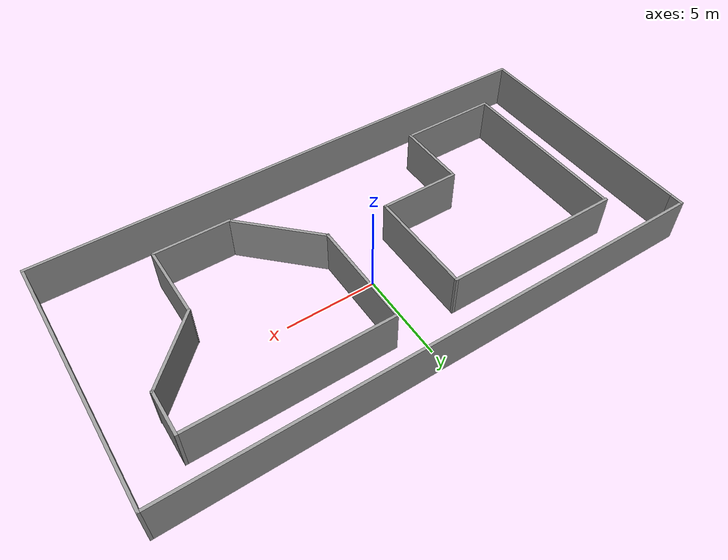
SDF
<?xml version='1.0'?>
<sdf version='1.6'>
  <model name='floorplan'>
    <pose frame=''>-0.247759 -1.08399 0 0 -0 0</pose>
    <link name='Wall_11'>
      <collision name='Wall_11_Collision'>
        <geometry>
          <box>
            <size>9.75 0.15 2.5</size>
          </box>
        </geometry>
        <pose frame=''>0 0 1.25 0 -0 0</pose>
      </collision>
      <visual name='Wall_11_Visual'>
        <pose frame=''>0 0 1.25 0 -0 0</pose>
        <geometry>
          <box>
            <size>9.75 0.15 2.5</size>
          </box>
        </geometry>
        <material>
          <script>
            <uri>file://media/materials/scripts/gazebo.material</uri>
            <name>Gazebo/Grey</name>
          </script>
          <ambient>1 1 1 1</ambient>
        </material>
        <meta>
          <layer>0</layer>
        </meta>
      </visual>
      <pose frame=''>-11.7101 -0.180374 0 0 -0 -1.5708</pose>
    </link>
    <link name='Wall_12'>
      <collision name='Wall_12_Collision'>
        <geometry>
          <box>
            <size>5.5 0.15 2.5</size>
          </box>
        </geometry>
        <pose frame=''>0 0 1.25 0 -0 0</pose>
      </collision>
      <visual name='Wall_12_Visual'>
        <pose frame=''>0 0 1.25 0 -0 0</pose>
        <geometry>
          <box>
            <size>5.5 0.15 2.5</size>
          </box>
        </geometry>
        <material>
          <script>
            <uri>file://media/materials/scripts/gazebo.material</uri>
            <name>Gazebo/Grey</name>
          </script>
          <ambient>1 1 1 1</ambient>
        </material>
        <meta>
          <layer>0</layer>
        </meta>
      </visual>
      <pose frame=''>-9.03506 -4.98037 0 0 -0 0</pose>
    </link>
    <link name='Wall_13'>
      <collision name='Wall_13_Collision'>
        <geometry>
          <box>
            <size>4 0.15 2.5</size>
          </box>
        </geometry>
        <pose frame=''>0 0 1.25 0 -0 0</pose>
      </collision>
      <visual name='Wall_13_Visual'>
        <pose frame=''>0 0 1.25 0 -0 0</pose>
        <geometry>
          <box>
            <size>4 0.15 2.5</size>
          </box>
        </geometry>
        <material>
          <script>
            <uri>file://media/materials/scripts/gazebo.material</uri>
            <name>Gazebo/Grey</name>
          </script>
          <ambient>1 1 1 1</ambient>
        </material>
        <meta>
          <layer>0</layer>
        </meta>
      </visual>
      <pose frame=''>-6.36006 -3.05537 0 0 -0 1.5708</pose>
    </link>
    <link name='Wall_14'>
      <collision name='Wall_14_Collision'>
        <geometry>
          <box>
            <size>4.5 0.15 2.5</size>
          </box>
        </geometry>
        <pose frame=''>0 0 1.25 0 -0 0</pose>
      </collision>
      <visual name='Wall_14_Visual'>
        <pose frame=''>0 0 1.25 0 -0 0</pose>
        <geometry>
          <box>
            <size>4.5 0.15 2.5</size>
          </box>
        </geometry>
        <material>
          <script>
            <uri>file://media/materials/scripts/gazebo.material</uri>
            <name>Gazebo/Grey</name>
          </script>
          <ambient>1 1 1 1</ambient>
        </material>
        <meta>
          <layer>0</layer>
        </meta>
      </visual>
      <pose frame=''>-4.18506 -1.13037 0 0 -0 0</pose>
    </link>
    <link name='Wall_15'>
      <collision name='Wall_15_Collision'>
        <geometry>
          <box>
            <size>6 0.15 2.5</size>
          </box>
        </geometry>
        <pose frame=''>0 0 1.25 0 -0 0</pose>
      </collision>
      <visual name='Wall_15_Visual'>
        <pose frame=''>0 0 1.25 0 -0 0</pose>
        <geometry>
          <box>
            <size>6 0.15 2.5</size>
          </box>
        </geometry>
        <material>
          <script>
            <uri>file://media/materials/scripts/gazebo.material</uri>
            <name>Gazebo/Grey</name>
          </script>
          <ambient>1 1 1 1</ambient>
        </material>
        <meta>
          <layer>0</layer>
        </meta>
      </visual>
      <pose frame=''>-2.01006 1.79463 0 0 -0 1.5708</pose>
    </link>
    <link name='Wall_16'>
      <collision name='Wall_16_Collision'>
        <geometry>
          <box>
            <size>9.9 0.15 2.5</size>
          </box>
        </geometry>
        <pose frame=''>0 0 1.25 0 -0 0</pose>
      </collision>
      <visual name='Wall_16_Visual'>
        <pose frame=''>0 0 1.25 0 -0 0</pose>
        <geometry>
          <box>
            <size>9.9 0.15 2.5</size>
          </box>
        </geometry>
        <material>
          <script>
            <uri>file://media/materials/scripts/gazebo.material</uri>
            <name>Gazebo/Grey</name>
          </script>
          <ambient>1 1 1 1</ambient>
        </material>
        <meta>
          <layer>0</layer>
        </meta>
      </visual>
      <pose frame=''>-6.88506 4.71963 0 0 -0 3.14159</pose>
    </link>
    <link name='Wall_18'>
      <collision name='Wall_18_Collision'>
        <geometry>
          <box>
            <size>6 0.15 2.5</size>
          </box>
        </geometry>
        <pose frame=''>0 0 1.25 0 -0 0</pose>
      </collision>
      <visual name='Wall_18_Visual'>
        <pose frame=''>0 0 1.25 0 -0 0</pose>
        <geometry>
          <box>
            <size>6 0.15 2.5</size>
          </box>
        </geometry>
        <material>
          <script>
            <uri>file://media/materials/scripts/gazebo.material</uri>
            <name>Gazebo/Grey</name>
          </script>
          <ambient>1 1 1 1</ambient>
        </material>
        <meta>
          <layer>0</layer>
        </meta>
      </visual>
      <pose frame=''>1.51375 1.8882 0 0 -0 -1.5708</pose>
    </link>
    <link name='Wall_19'>
      <collision name='Wall_19_Collision'>
        <geometry>
          <box>
            <size>5.25 0.15 2.5</size>
          </box>
        </geometry>
        <pose frame=''>0 0 1.25 0 -0 0</pose>
      </collision>
      <visual name='Wall_19_Visual'>
        <pose frame=''>0 0 1.25 0 -0 0</pose>
        <geometry>
          <box>
            <size>5.25 0.15 2.5</size>
          </box>
        </geometry>
        <material>
          <script>
            <uri>file://media/materials/scripts/gazebo.material</uri>
            <name>Gazebo/Grey</name>
          </script>
          <ambient>1 1 1 1</ambient>
        </material>
        <meta>
          <layer>0</layer>
        </meta>
      </visual>
      <pose frame=''>3.31688 -2.83992 0 0 -0 -0.785398</pose>
    </link>
    <link name='Wall_20'>
      <collision name='Wall_20_Collision'>
        <geometry>
          <box>
            <size>4.25 0.15 2.5</size>
          </box>
        </geometry>
        <pose frame=''>0 0 1.25 0 -0 0</pose>
      </collision>
      <visual name='Wall_20_Visual'>
        <pose frame=''>0 0 1.25 0 -0 0</pose>
        <geometry>
          <box>
            <size>4.25 0.15 2.5</size>
          </box>
        </geometry>
        <material>
          <script>
            <uri>file://media/materials/scripts/gazebo.material</uri>
            <name>Gazebo/Grey</name>
          </script>
          <ambient>1 1 1 1</ambient>
        </material>
        <meta>
          <layer>0</layer>
        </meta>
      </visual>
      <pose frame=''>7.17 -4.64304 0 0 -0 0</pose>
    </link>
    <link name='Wall_21'>
      <collision name='Wall_21_Collision'>
        <geometry>
          <box>
            <size>4.25 0.15 2.5</size>
          </box>
        </geometry>
        <pose frame=''>0 0 1.25 0 -0 0</pose>
      </collision>
      <visual name='Wall_21_Visual'>
        <pose frame=''>0 0 1.25 0 -0 0</pose>
        <geometry>
          <box>
            <size>4.25 0.15 2.5</size>
          </box>
        </geometry>
        <material>
          <script>
            <uri>file://media/materials/scripts/gazebo.material</uri>
            <name>Gazebo/Grey</name>
          </script>
          <ambient>1 1 1 1</ambient>
        </material>
        <meta>
          <layer>0</layer>
        </meta>
      </visual>
      <pose frame=''>9.22 -2.59304 0 0 -0 1.5708</pose>
    </link>
    <link name='Wall_22'>
      <collision name='Wall_22_Collision'>
        <geometry>
          <box>
            <size>4.5 0.15 2.5</size>
          </box>
        </geometry>
        <pose frame=''>0 0 1.25 0 -0 0</pose>
      </collision>
      <visual name='Wall_22_Visual'>
        <pose frame=''>0 0 1.25 0 -0 0</pose>
        <geometry>
          <box>
            <size>4.5 0.15 2.5</size>
          </box>
        </geometry>
        <material>
          <script>
            <uri>file://media/materials/scripts/gazebo.material</uri>
            <name>Gazebo/Grey</name>
          </script>
          <ambient>1 1 1 1</ambient>
        </material>
        <meta>
          <layer>0</layer>
        </meta>
      </visual>
      <pose frame=''>10.758 0.994916 0 0 -0 0.785398</pose>
    </link>
    <link name='Wall_23'>
      <collision name='Wall_23_Collision'>
        <geometry>
          <box>
            <size>2.5 0.15 2.5</size>
          </box>
        </geometry>
        <pose frame=''>0 0 1.25 0 -0 0</pose>
      </collision>
      <visual name='Wall_23_Visual'>
        <pose frame=''>0 0 1.25 0 -0 0</pose>
        <geometry>
          <box>
            <size>2.5 0.15 2.5</size>
          </box>
        </geometry>
        <material>
          <script>
            <uri>file://media/materials/scripts/gazebo.material</uri>
            <name>Gazebo/Grey</name>
          </script>
          <ambient>1 1 1 1</ambient>
        </material>
        <meta>
          <layer>0</layer>
        </meta>
      </visual>
      <pose frame=''>12.2959 3.70787 0 0 -0 1.5708</pose>
    </link>
    <link name='Wall_24'>
      <collision name='Wall_24_Collision'>
        <geometry>
          <box>
            <size>10.9 0.15 2.5</size>
          </box>
        </geometry>
        <pose frame=''>0 0 1.25 0 -0 0</pose>
      </collision>
      <visual name='Wall_24_Visual'>
        <pose frame=''>0 0 1.25 0 -0 0</pose>
        <geometry>
          <box>
            <size>10.9 0.15 2.5</size>
          </box>
        </geometry>
        <material>
          <script>
            <uri>file://media/materials/scripts/gazebo.material</uri>
            <name>Gazebo/Grey</name>
          </script>
          <ambient>1 1 1 1</ambient>
        </material>
        <meta>
          <layer>0</layer>
        </meta>
      </visual>
      <pose frame=''>6.92091 4.88287 0 0 -0 3.14159</pose>
    </link>
    <link name='Wall_5'>
      <collision name='Wall_5_Collision'>
        <geometry>
          <box>
            <size>13.5 0.15 2.5</size>
          </box>
        </geometry>
        <pose frame=''>0 0 1.25 0 -0 0</pose>
      </collision>
      <visual name='Wall_5_Visual'>
        <pose frame=''>0 0 1.25 0 -0 0</pose>
        <geometry>
          <box>
            <size>13.5 0.15 2.5</size>
          </box>
        </geometry>
        <material>
          <script>
            <uri>file://media/materials/scripts/gazebo.material</uri>
            <name>Gazebo/Grey</name>
          </script>
          <ambient>1 1 1 1</ambient>
        </material>
        <meta>
          <layer>0</layer>
        </meta>
      </visual>
      <pose frame=''>-14.8 -0.375 0 0 -0 -1.5708</pose>
    </link>
    <link name='Wall_6'>
      <collision name='Wall_6_Collision'>
        <geometry>
          <box>
            <size>29.75 0.15 2.5</size>
          </box>
        </geometry>
        <pose frame=''>0 0 1.25 0 -0 0</pose>
      </collision>
      <visual name='Wall_6_Visual'>
        <pose frame=''>0 0 1.25 0 -0 0</pose>
        <geometry>
          <box>
            <size>29.75 0.15 2.5</size>
          </box>
        </geometry>
        <material>
          <script>
            <uri>file://media/materials/scripts/gazebo.material</uri>
            <name>Gazebo/Grey</name>
          </script>
          <ambient>1 1 1 1</ambient>
        </material>
        <meta>
          <layer>0</layer>
        </meta>
      </visual>
      <pose frame=''>0 -7.05 0 0 -0 0</pose>
    </link>
    <link name='Wall_7'>
      <collision name='Wall_7_Collision'>
        <geometry>
          <box>
            <size>14.25 0.15 2.5</size>
          </box>
        </geometry>
        <pose frame=''>0 0 1.25 0 -0 0</pose>
      </collision>
      <visual name='Wall_7_Visual'>
        <pose frame=''>0 0 1.25 0 -0 0</pose>
        <geometry>
          <box>
            <size>14.25 0.15 2.5</size>
          </box>
        </geometry>
        <material>
          <script>
            <uri>file://media/materials/scripts/gazebo.material</uri>
            <name>Gazebo/Grey</name>
          </script>
          <ambient>1 1 1 1</ambient>
        </material>
        <meta>
          <layer>0</layer>
        </meta>
      </visual>
      <pose frame=''>14.8 0 0 0 -0 1.5708</pose>
    </link>
    <link name='Wall_8'>
      <collision name='Wall_8_Collision'>
        <geometry>
          <box>
            <size>29.75 0.15 2.5</size>
          </box>
        </geometry>
        <pose frame=''>0 0 1.25 0 -0 0</pose>
      </collision>
      <visual name='Wall_8_Visual'>
        <pose frame=''>0 0 1.25 0 -0 0</pose>
        <geometry>
          <box>
            <size>29.75 0.15 2.5</size>
          </box>
        </geometry>
        <material>
          <script>
            <uri>file://media/materials/scripts/gazebo.material</uri>
            <name>Gazebo/Grey</name>
          </script>
          <ambient>1 1 1 1</ambient>
        </material>
        <meta>
          <layer>0</layer>
        </meta>
      </visual>
      <pose frame=''>0 7.05 0 0 -0 3.14159</pose>
    </link>
    <link name='Wall_9'>
      <collision name='Wall_9_Collision'>
        <geometry>
          <box>
            <size>1.25 0.15 2.5</size>
          </box>
        </geometry>
        <pose frame=''>0 0 1.25 0 -0 0</pose>
      </collision>
      <visual name='Wall_9_Visual'>
        <pose frame=''>0 0 1.25 0 -0 0</pose>
        <geometry>
          <box>
            <size>1.25 0.15 2.5</size>
          </box>
        </geometry>
        <material>
          <script>
            <uri>file://media/materials/scripts/gazebo.material</uri>
            <name>Gazebo/Grey</name>
          </script>
          <ambient>1 1 1 1</ambient>
        </material>
        <meta>
          <layer>0</layer>
        </meta>
      </visual>
      <pose frame=''>-14.8 6.5 0 0 -0 -1.5708</pose>
    </link>
    <static>1</static>
  </model>
</sdf>
